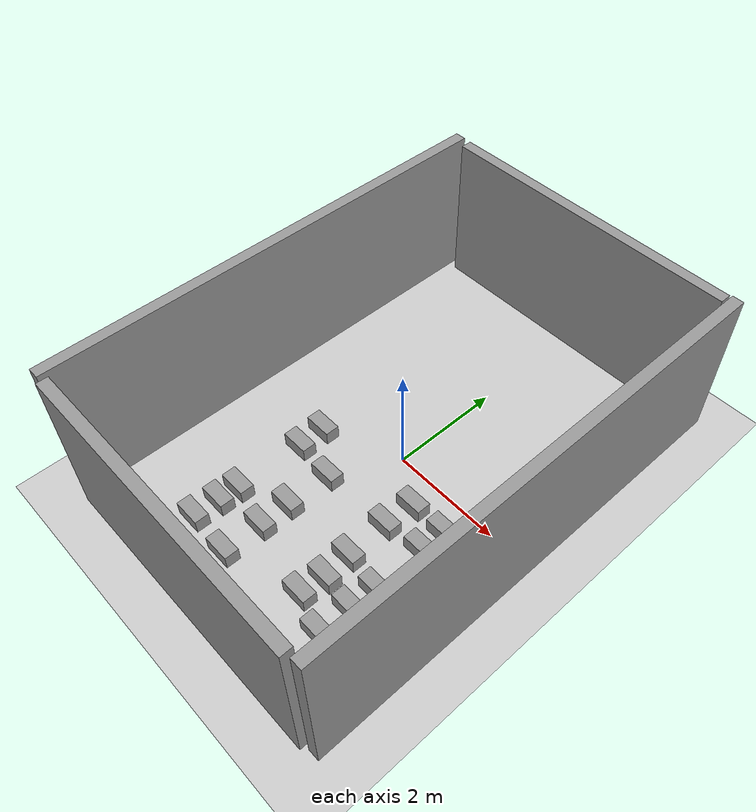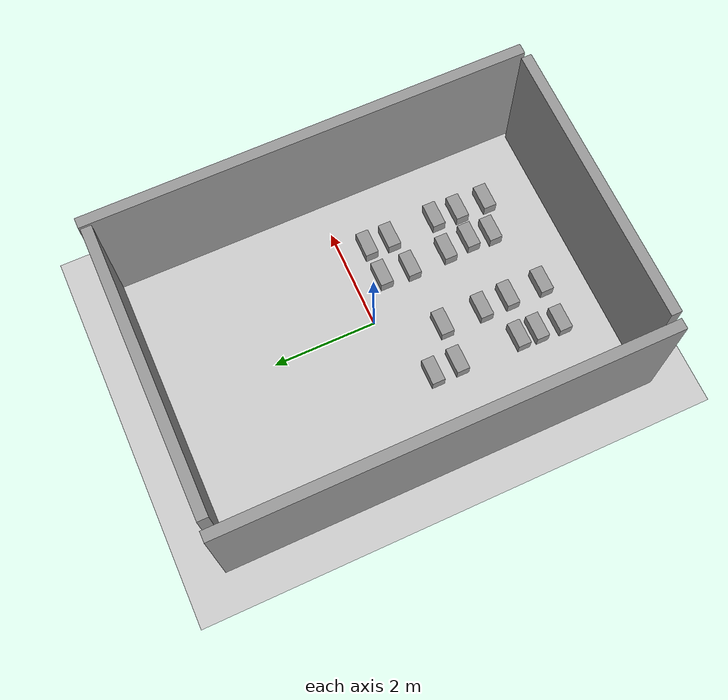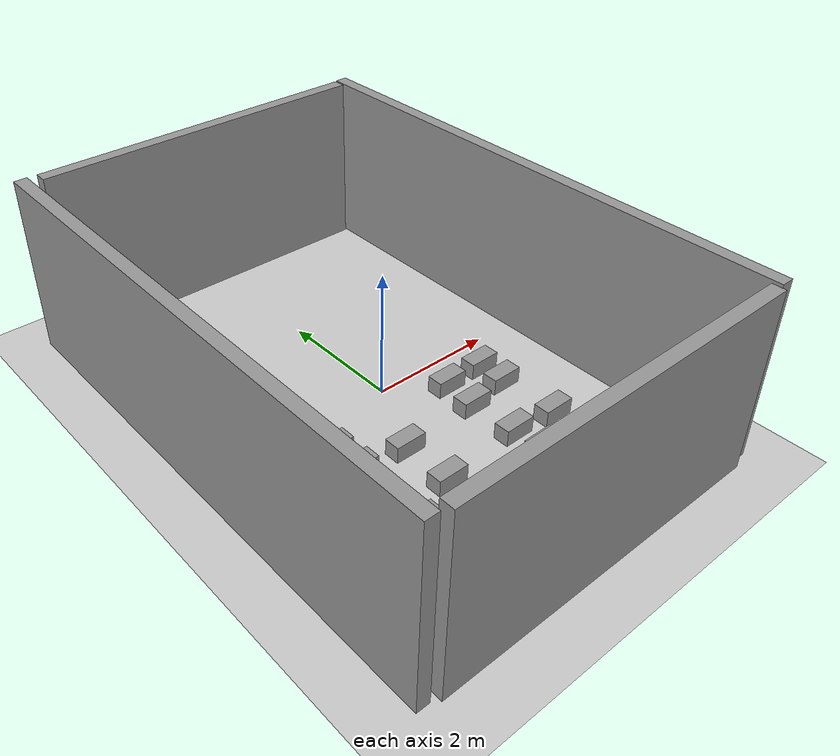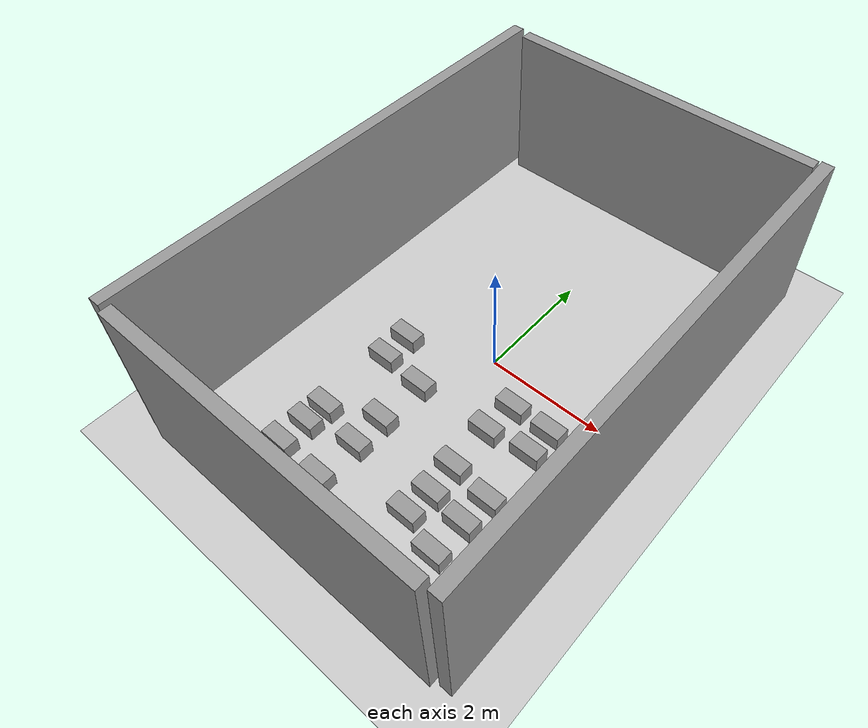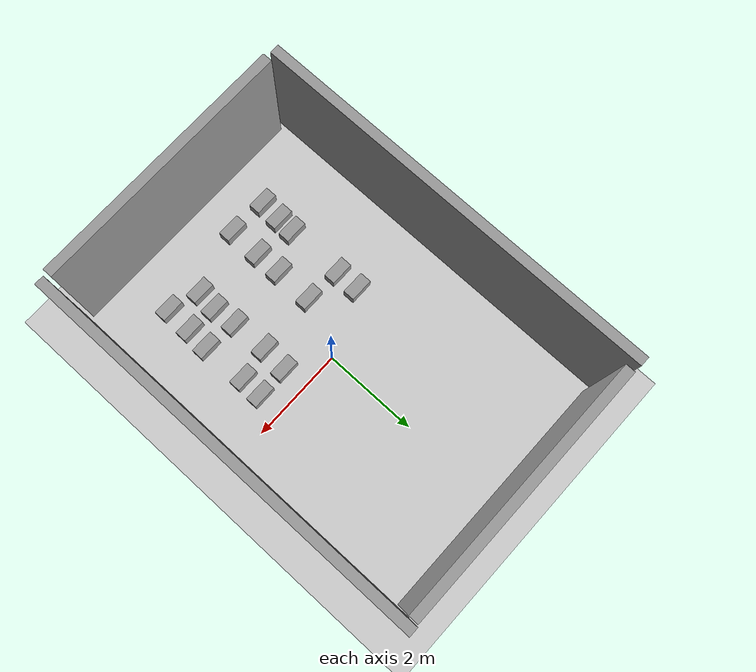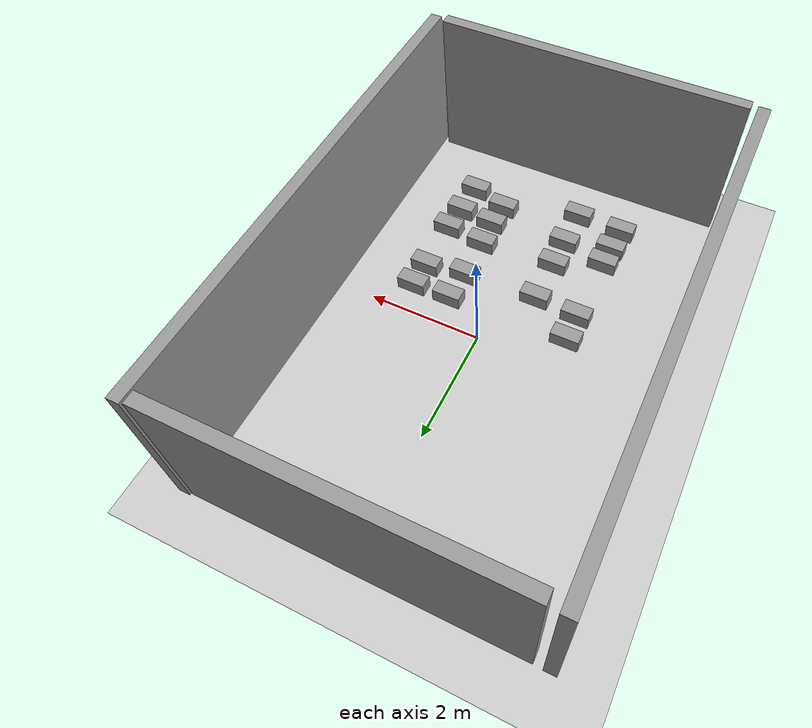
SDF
<sdf version="1.7">
 <world name="default">
  <model name="ground_plane">
   <static>1</static>
   <link name="link">
    <collision name="collision">
     <geometry><plane><normal>0 0 1</normal><size>100 100</size></plane></geometry>
     <surface>
      <contact><collide_bitmask>65535</collide_bitmask></contact>
      <friction><ode><mu>100</mu><mu2>50</mu2></ode></friction>
     </surface>
    </collision>
    <visual name="visual">
     <cast_shadows>0</cast_shadows>
     <geometry><plane><normal>0 0 1</normal><size>100 100</size></plane></geometry>
     <material>
      <script><uri>file://media/materials/scripts/gazebo.material</uri><name>Gazebo/Grey</name></script>
     </material>
    </visual>
   </link>
  </model>
  <model name="grey_wall_8_5">
   <link name="link">
    <pose>0 4.29385 1.4 0 -0 0</pose>
    <inertial>
     <mass>1</mass>
     <inertia><ixx>1</ixx><ixy>0</ixy><ixz>0</ixz><iyy>1</iyy><iyz>0</iyz><izz>1</izz></inertia>
    </inertial>
    <visual name="visual">
     <cast_shadows>0</cast_shadows>
     <geometry><box><size>5.4 0.2 2.8</size></box></geometry>
     <material>
      <script>
       <uri>model://grey_wall/materials/scripts</uri>
       <uri>model://grey_wall/materials/textures</uri>
       <name>vrc/grey_wall</name>
      </script>
      <shader type="pixel"><normal_map>__default__</normal_map></shader>
      <ambient>1 1 1 1</ambient>
      <diffuse>1 1 1 1</diffuse>
      <specular>0 0 0 1</specular>
      <emissive>0 0 0 1</emissive>
     </material>
    </visual>
    <collision name="collision">
     <geometry><box><size>5.4 0.2 2.8</size></box></geometry>
     <surface>
      <friction>
       <ode><mu>1</mu><mu2>1</mu2><fdir1>0 0 0</fdir1><slip1>0</slip1><slip2>0</slip2></ode>
       <torsional>
        <coefficient>1</coefficient>
        <patch_radius>0</patch_radius>
        <surface_radius>0</surface_radius>
        <use_patch_radius>1</use_patch_radius>
        <ode><slip>0</slip></ode>
       </torsional>
      </friction>
      <bounce><restitution_coefficient>0</restitution_coefficient><threshold>1e+06</threshold></bounce>
      <contact>
       <collide_without_contact>0</collide_without_contact>
       <collide_without_contact_bitmask>1</collide_without_contact_bitmask>
       <collide_bitmask>1</collide_bitmask>
       <ode>
        <soft_cfm>0</soft_cfm>
        <soft_erp>0.2</soft_erp>
        <kp>1e+13</kp>
        <kd>1</kd>
        <max_vel>0.01</max_vel>
        <min_depth>0</min_depth>
       </ode>
       <bullet>
        <split_impulse>1</split_impulse>
        <split_impulse_penetration_threshold>-0.01</split_impulse_penetration_threshold>
        <soft_cfm>0</soft_cfm>
        <soft_erp>0.2</soft_erp>
        <kp>1e+13</kp>
        <kd>1</kd>
       </bullet>
      </contact>
     </surface>
    </collision>
   </link>
   <link name="link_clone">
    <pose>0.043634 12.556 1.4 0 -0 0</pose>
    <inertial>
     <mass>1</mass>
     <inertia><ixx>1</ixx><ixy>0</ixy><ixz>0</ixz><iyy>1</iyy><iyz>0</iyz><izz>1</izz></inertia>
    </inertial>
    <visual name="visual">
     <cast_shadows>0</cast_shadows>
     <geometry><box><size>5.4 0.2 2.8</size></box></geometry>
     <material>
      <script>
       <uri>model://grey_wall/materials/scripts</uri>
       <uri>model://grey_wall/materials/textures</uri>
       <name>vrc/grey_wall</name>
      </script>
      <shader type="pixel"><normal_map>__default__</normal_map></shader>
      <ambient>1 1 1 1</ambient>
      <diffuse>1 1 1 1</diffuse>
      <specular>0 0 0 1</specular>
      <emissive>0 0 0 1</emissive>
     </material>
    </visual>
    <collision name="collision">
     <geometry><box><size>5.4 0.2 2.8</size></box></geometry>
     <surface>
      <friction>
       <ode><mu>1</mu><mu2>1</mu2><fdir1>0 0 0</fdir1><slip1>0</slip1><slip2>0</slip2></ode>
       <torsional>
        <coefficient>1</coefficient>
        <patch_radius>0</patch_radius>
        <surface_radius>0</surface_radius>
        <use_patch_radius>1</use_patch_radius>
        <ode><slip>0</slip></ode>
       </torsional>
      </friction>
      <bounce><restitution_coefficient>0</restitution_coefficient><threshold>1e+06</threshold></bounce>
      <contact>
       <collide_without_contact>0</collide_without_contact>
       <collide_without_contact_bitmask>1</collide_without_contact_bitmask>
       <collide_bitmask>1</collide_bitmask>
       <ode>
        <soft_cfm>0</soft_cfm>
        <soft_erp>0.2</soft_erp>
        <kp>1e+13</kp>
        <kd>1</kd>
        <max_vel>0.01</max_vel>
        <min_depth>0</min_depth>
       </ode>
       <bullet>
        <split_impulse>1</split_impulse>
        <split_impulse_penetration_threshold>-0.01</split_impulse_penetration_threshold>
        <soft_cfm>0</soft_cfm>
        <soft_erp>0.2</soft_erp>
        <kp>1e+13</kp>
        <kd>1</kd>
       </bullet>
      </contact>
     </surface>
    </collision>
   </link>
   <link name="link_clone_0">
    <pose>2.87528 8.48137 1.4 0 -0 0</pose>
    <inertial>
     <mass>1</mass>
     <inertia><ixx>1</ixx><ixy>0</ixy><ixz>0</ixz><iyy>1</iyy><iyz>0</iyz><izz>1</izz></inertia>
    </inertial>
    <visual name="visual">
     <cast_shadows>0</cast_shadows>
     <geometry><box><size>0.2 8.4 2.8</size></box></geometry>
     <material>
      <script>
       <uri>model://grey_wall/materials/scripts</uri>
       <uri>model://grey_wall/materials/textures</uri>
       <name>vrc/grey_wall</name>
      </script>
      <shader type="pixel"><normal_map>__default__</normal_map></shader>
      <ambient>1 1 1 1</ambient>
      <diffuse>1 1 1 1</diffuse>
      <specular>0 0 0 1</specular>
      <emissive>0 0 0 1</emissive>
     </material>
    </visual>
    <collision name="collision">
     <geometry><box><size>0.2 8.4 2.8</size></box></geometry>
     <surface>
      <friction>
       <ode><mu>1</mu><mu2>1</mu2><fdir1>0 0 0</fdir1><slip1>0</slip1><slip2>0</slip2></ode>
       <torsional>
        <coefficient>1</coefficient>
        <patch_radius>0</patch_radius>
        <surface_radius>0</surface_radius>
        <use_patch_radius>1</use_patch_radius>
        <ode><slip>0</slip></ode>
       </torsional>
      </friction>
      <bounce><restitution_coefficient>0</restitution_coefficient><threshold>1e+06</threshold></bounce>
      <contact>
       <collide_without_contact>0</collide_without_contact>
       <collide_without_contact_bitmask>1</collide_without_contact_bitmask>
       <collide_bitmask>1</collide_bitmask>
       <ode>
        <soft_cfm>0</soft_cfm>
        <soft_erp>0.2</soft_erp>
        <kp>1e+13</kp>
        <kd>1</kd>
        <max_vel>0.01</max_vel>
        <min_depth>0</min_depth>
       </ode>
       <bullet>
        <split_impulse>1</split_impulse>
        <split_impulse_penetration_threshold>-0.01</split_impulse_penetration_threshold>
        <soft_cfm>0</soft_cfm>
        <soft_erp>0.2</soft_erp>
        <kp>1e+13</kp>
        <kd>1</kd>
       </bullet>
      </contact>
     </surface>
    </collision>
   </link>
   <link name="link_clone_0_clone">
    <pose>-2.90085 8.46581 1.4 0 -0 0</pose>
    <inertial>
     <mass>1</mass>
     <inertia><ixx>1</ixx><ixy>0</ixy><ixz>0</ixz><iyy>1</iyy><iyz>0</iyz><izz>1</izz></inertia>
    </inertial>
    <visual name="visual">
     <cast_shadows>0</cast_shadows>
     <geometry><box><size>0.2 8.4 2.8</size></box></geometry>
     <material>
      <script>
       <uri>model://grey_wall/materials/scripts</uri>
       <uri>model://grey_wall/materials/textures</uri>
       <name>vrc/grey_wall</name>
      </script>
      <shader type="pixel"><normal_map>__default__</normal_map></shader>
      <ambient>1 1 1 1</ambient>
      <diffuse>1 1 1 1</diffuse>
      <specular>0 0 0 1</specular>
      <emissive>0 0 0 1</emissive>
     </material>
    </visual>
    <collision name="collision">
     <geometry><box><size>0.2 8.4 2.8</size></box></geometry>
     <surface>
      <friction>
       <ode><mu>1</mu><mu2>1</mu2><fdir1>0 0 0</fdir1><slip1>0</slip1><slip2>0</slip2></ode>
       <torsional>
        <coefficient>1</coefficient>
        <patch_radius>0</patch_radius>
        <surface_radius>0</surface_radius>
        <use_patch_radius>1</use_patch_radius>
        <ode><slip>0</slip></ode>
       </torsional>
      </friction>
      <bounce><restitution_coefficient>0</restitution_coefficient><threshold>1e+06</threshold></bounce>
      <contact>
       <collide_without_contact>0</collide_without_contact>
       <collide_without_contact_bitmask>1</collide_without_contact_bitmask>
       <collide_bitmask>1</collide_bitmask>
       <ode>
        <soft_cfm>0</soft_cfm>
        <soft_erp>0.2</soft_erp>
        <kp>1e+13</kp>
        <kd>1</kd>
        <max_vel>0.01</max_vel>
        <min_depth>0</min_depth>
       </ode>
       <bullet>
        <split_impulse>1</split_impulse>
        <split_impulse_penetration_threshold>-0.01</split_impulse_penetration_threshold>
        <soft_cfm>0</soft_cfm>
        <soft_erp>0.2</soft_erp>
        <kp>1e+13</kp>
        <kd>1</kd>
       </bullet>
      </contact>
     </surface>
    </collision>
   </link>
   <static>1</static>
   <pose>-0.144395 -8.42706 0 0 -0 0</pose>
  </model>
  <model name="box_race_car_clone_20">
   <link name="link">
    <inertial>
     <mass>10</mass>
     <inertia>
      <ixx>0.260417</ixx>
      <ixy>0</ixy>
      <ixz>0</ixz>
      <iyy>0.416667</iyy>
      <iyz>0</iyz>
      <izz>0.260417</izz>
     </inertia>
    </inertial>
    <visual name="visual">
     <geometry><box><size>0.5 0.25 0.5</size></box></geometry>
     <material>
      <script><name>Gazebo/Grey</name><uri>file://media/materials/scripts/gazebo.material</uri></script>
      <shader type="pixel"><normal_map>__default__</normal_map></shader>
      <ambient>0.3 0.3 0.3 1</ambient>
      <diffuse>0.7 0.7 0.7 1</diffuse>
      <specular>0.01 0.01 0.01 1</specular>
      <emissive>0 0 0 1</emissive>
     </material>
    </visual>
    <collision name="collision">
     <geometry><box><size>0.5 0.25 0.5</size></box></geometry>
     <surface>
      <friction>
       <ode><mu>1</mu><mu2>1</mu2><fdir1>0 0 0</fdir1><slip1>0</slip1><slip2>0</slip2></ode>
       <torsional>
        <coefficient>1</coefficient>
        <patch_radius>0</patch_radius>
        <surface_radius>0</surface_radius>
        <use_patch_radius>1</use_patch_radius>
        <ode><slip>0</slip></ode>
       </torsional>
      </friction>
      <bounce><restitution_coefficient>0</restitution_coefficient><threshold>1e+06</threshold></bounce>
      <contact>
       <collide_without_contact>0</collide_without_contact>
       <collide_without_contact_bitmask>1</collide_without_contact_bitmask>
       <collide_bitmask>1</collide_bitmask>
       <ode>
        <soft_cfm>0</soft_cfm>
        <soft_erp>0.2</soft_erp>
        <kp>1e+13</kp>
        <kd>1</kd>
        <max_vel>0.01</max_vel>
        <min_depth>0</min_depth>
       </ode>
       <bullet>
        <split_impulse>1</split_impulse>
        <split_impulse_penetration_threshold>-0.01</split_impulse_penetration_threshold>
        <soft_cfm>0</soft_cfm>
        <soft_erp>0.2</soft_erp>
        <kp>1e+13</kp>
        <kd>1</kd>
       </bullet>
      </contact>
     </surface>
    </collision>
   </link>
   <static>0</static>
   <pose>-0.568656 -1.13771 0 0 -0 0</pose>
  </model>
  <model name="box_race_car_clone_20_clone">
   <link name="link">
    <inertial>
     <mass>10</mass>
     <inertia>
      <ixx>0.260417</ixx>
      <ixy>0</ixy>
      <ixz>0</ixz>
      <iyy>0.416667</iyy>
      <iyz>0</iyz>
      <izz>0.260417</izz>
     </inertia>
    </inertial>
    <visual name="visual">
     <geometry><box><size>0.5 0.25 0.5</size></box></geometry>
     <material>
      <script><name>Gazebo/Grey</name><uri>file://media/materials/scripts/gazebo.material</uri></script>
      <shader type="pixel"><normal_map>__default__</normal_map></shader>
      <ambient>0.3 0.3 0.3 1</ambient>
      <diffuse>0.7 0.7 0.7 1</diffuse>
      <specular>0.01 0.01 0.01 1</specular>
      <emissive>0 0 0 1</emissive>
     </material>
    </visual>
    <collision name="collision">
     <geometry><box><size>0.5 0.25 0.5</size></box></geometry>
     <surface>
      <friction>
       <ode><mu>1</mu><mu2>1</mu2><fdir1>0 0 0</fdir1><slip1>0</slip1><slip2>0</slip2></ode>
       <torsional>
        <coefficient>1</coefficient>
        <patch_radius>0</patch_radius>
        <surface_radius>0</surface_radius>
        <use_patch_radius>1</use_patch_radius>
        <ode><slip>0</slip></ode>
       </torsional>
      </friction>
      <bounce><restitution_coefficient>0</restitution_coefficient><threshold>1e+06</threshold></bounce>
      <contact>
       <collide_without_contact>0</collide_without_contact>
       <collide_without_contact_bitmask>1</collide_without_contact_bitmask>
       <collide_bitmask>1</collide_bitmask>
       <ode>
        <soft_cfm>0</soft_cfm>
        <soft_erp>0.2</soft_erp>
        <kp>1e+13</kp>
        <kd>1</kd>
        <max_vel>0.01</max_vel>
        <min_depth>0</min_depth>
       </ode>
       <bullet>
        <split_impulse>1</split_impulse>
        <split_impulse_penetration_threshold>-0.01</split_impulse_penetration_threshold>
        <soft_cfm>0</soft_cfm>
        <soft_erp>0.2</soft_erp>
        <kp>1e+13</kp>
        <kd>1</kd>
       </bullet>
      </contact>
     </surface>
    </collision>
   </link>
   <static>0</static>
   <pose>-0.571618 -1.9502 0 0 -0 0</pose>
  </model>
  <model name="box_race_car_clone_20_clone_0">
   <link name="link">
    <inertial>
     <mass>10</mass>
     <inertia>
      <ixx>0.260417</ixx>
      <ixy>0</ixy>
      <ixz>0</ixz>
      <iyy>0.416667</iyy>
      <iyz>0</iyz>
      <izz>0.260417</izz>
     </inertia>
    </inertial>
    <visual name="visual">
     <geometry><box><size>0.5 0.25 0.5</size></box></geometry>
     <material>
      <script><name>Gazebo/Grey</name><uri>file://media/materials/scripts/gazebo.material</uri></script>
      <shader type="pixel"><normal_map>__default__</normal_map></shader>
      <ambient>0.3 0.3 0.3 1</ambient>
      <diffuse>0.7 0.7 0.7 1</diffuse>
      <specular>0.01 0.01 0.01 1</specular>
      <emissive>0 0 0 1</emissive>
     </material>
    </visual>
    <collision name="collision">
     <geometry><box><size>0.5 0.25 0.5</size></box></geometry>
     <surface>
      <friction>
       <ode><mu>1</mu><mu2>1</mu2><fdir1>0 0 0</fdir1><slip1>0</slip1><slip2>0</slip2></ode>
       <torsional>
        <coefficient>1</coefficient>
        <patch_radius>0</patch_radius>
        <surface_radius>0</surface_radius>
        <use_patch_radius>1</use_patch_radius>
        <ode><slip>0</slip></ode>
       </torsional>
      </friction>
      <bounce><restitution_coefficient>0</restitution_coefficient><threshold>1e+06</threshold></bounce>
      <contact>
       <collide_without_contact>0</collide_without_contact>
       <collide_without_contact_bitmask>1</collide_without_contact_bitmask>
       <collide_bitmask>1</collide_bitmask>
       <ode>
        <soft_cfm>0</soft_cfm>
        <soft_erp>0.2</soft_erp>
        <kp>1e+13</kp>
        <kd>1</kd>
        <max_vel>0.01</max_vel>
        <min_depth>0</min_depth>
       </ode>
       <bullet>
        <split_impulse>1</split_impulse>
        <split_impulse_penetration_threshold>-0.01</split_impulse_penetration_threshold>
        <soft_cfm>0</soft_cfm>
        <soft_erp>0.2</soft_erp>
        <kp>1e+13</kp>
        <kd>1</kd>
       </bullet>
      </contact>
     </surface>
    </collision>
   </link>
   <static>0</static>
   <pose>-0.559718 -2.50311 0 0 -0 0</pose>
  </model>
  <model name="box_race_car_clone_20_clone_1">
   <link name="link">
    <inertial>
     <mass>10</mass>
     <inertia>
      <ixx>0.260417</ixx>
      <ixy>0</ixy>
      <ixz>0</ixz>
      <iyy>0.416667</iyy>
      <iyz>0</iyz>
      <izz>0.260417</izz>
     </inertia>
    </inertial>
    <visual name="visual">
     <geometry><box><size>0.5 0.25 0.5</size></box></geometry>
     <material>
      <script><name>Gazebo/Grey</name><uri>file://media/materials/scripts/gazebo.material</uri></script>
      <shader type="pixel"><normal_map>__default__</normal_map></shader>
      <ambient>0.3 0.3 0.3 1</ambient>
      <diffuse>0.7 0.7 0.7 1</diffuse>
      <specular>0.01 0.01 0.01 1</specular>
      <emissive>0 0 0 1</emissive>
     </material>
    </visual>
    <collision name="collision">
     <geometry><box><size>0.5 0.25 0.5</size></box></geometry>
     <surface>
      <friction>
       <ode><mu>1</mu><mu2>1</mu2><fdir1>0 0 0</fdir1><slip1>0</slip1><slip2>0</slip2></ode>
       <torsional>
        <coefficient>1</coefficient>
        <patch_radius>0</patch_radius>
        <surface_radius>0</surface_radius>
        <use_patch_radius>1</use_patch_radius>
        <ode><slip>0</slip></ode>
       </torsional>
      </friction>
      <bounce><restitution_coefficient>0</restitution_coefficient><threshold>1e+06</threshold></bounce>
      <contact>
       <collide_without_contact>0</collide_without_contact>
       <collide_without_contact_bitmask>1</collide_without_contact_bitmask>
       <collide_bitmask>1</collide_bitmask>
       <ode>
        <soft_cfm>0</soft_cfm>
        <soft_erp>0.2</soft_erp>
        <kp>1e+13</kp>
        <kd>1</kd>
        <max_vel>0.01</max_vel>
        <min_depth>0</min_depth>
       </ode>
       <bullet>
        <split_impulse>1</split_impulse>
        <split_impulse_penetration_threshold>-0.01</split_impulse_penetration_threshold>
        <soft_cfm>0</soft_cfm>
        <soft_erp>0.2</soft_erp>
        <kp>1e+13</kp>
        <kd>1</kd>
       </bullet>
      </contact>
     </surface>
    </collision>
   </link>
   <static>0</static>
   <pose>-0.572264 -3.20323 0 0 -0 0</pose>
  </model>
  <model name="box_race_car_clone_20_clone_13">
   <link name="link">
    <inertial>
     <mass>10</mass>
     <inertia>
      <ixx>0.260417</ixx>
      <ixy>0</ixy>
      <ixz>0</ixz>
      <iyy>0.416667</iyy>
      <iyz>0</iyz>
      <izz>0.260417</izz>
     </inertia>
    </inertial>
    <visual name="visual">
     <geometry><box><size>0.5 0.25 0.5</size></box></geometry>
     <material>
      <script><name>Gazebo/Grey</name><uri>file://media/materials/scripts/gazebo.material</uri></script>
      <shader type="pixel"><normal_map>__default__</normal_map></shader>
      <ambient>0.3 0.3 0.3 1</ambient>
      <diffuse>0.7 0.7 0.7 1</diffuse>
      <specular>0.01 0.01 0.01 1</specular>
      <emissive>0 0 0 1</emissive>
     </material>
    </visual>
    <collision name="collision">
     <geometry><box><size>0.5 0.25 0.5</size></box></geometry>
     <surface>
      <friction>
       <ode><mu>1</mu><mu2>1</mu2><fdir1>0 0 0</fdir1><slip1>0</slip1><slip2>0</slip2></ode>
       <torsional>
        <coefficient>1</coefficient>
        <patch_radius>0</patch_radius>
        <surface_radius>0</surface_radius>
        <use_patch_radius>1</use_patch_radius>
        <ode><slip>0</slip></ode>
       </torsional>
      </friction>
      <bounce><restitution_coefficient>0</restitution_coefficient><threshold>1e+06</threshold></bounce>
      <contact>
       <collide_without_contact>0</collide_without_contact>
       <collide_without_contact_bitmask>1</collide_without_contact_bitmask>
       <collide_bitmask>1</collide_bitmask>
       <ode>
        <soft_cfm>0</soft_cfm>
        <soft_erp>0.2</soft_erp>
        <kp>1e+13</kp>
        <kd>1</kd>
        <max_vel>0.01</max_vel>
        <min_depth>0</min_depth>
       </ode>
       <bullet>
        <split_impulse>1</split_impulse>
        <split_impulse_penetration_threshold>-0.01</split_impulse_penetration_threshold>
        <soft_cfm>0</soft_cfm>
        <soft_erp>0.2</soft_erp>
        <kp>1e+13</kp>
        <kd>1</kd>
       </bullet>
      </contact>
     </surface>
    </collision>
   </link>
   <static>0</static>
   <pose>-1.35625 -0.573353 0 0 -0 0</pose>
  </model>
  <model name="box_race_car_clone_20_clone_14">
   <link name="link">
    <inertial>
     <mass>10</mass>
     <inertia>
      <ixx>0.260417</ixx>
      <ixy>0</ixy>
      <ixz>0</ixz>
      <iyy>0.416667</iyy>
      <iyz>0</iyz>
      <izz>0.260417</izz>
     </inertia>
    </inertial>
    <visual name="visual">
     <geometry><box><size>0.5 0.25 0.5</size></box></geometry>
     <material>
      <script><name>Gazebo/Grey</name><uri>file://media/materials/scripts/gazebo.material</uri></script>
      <shader type="pixel"><normal_map>__default__</normal_map></shader>
      <ambient>0.3 0.3 0.3 1</ambient>
      <diffuse>0.7 0.7 0.7 1</diffuse>
      <specular>0.01 0.01 0.01 1</specular>
      <emissive>0 0 0 1</emissive>
     </material>
    </visual>
    <collision name="collision">
     <geometry><box><size>0.5 0.25 0.5</size></box></geometry>
     <surface>
      <friction>
       <ode><mu>1</mu><mu2>1</mu2><fdir1>0 0 0</fdir1><slip1>0</slip1><slip2>0</slip2></ode>
       <torsional>
        <coefficient>1</coefficient>
        <patch_radius>0</patch_radius>
        <surface_radius>0</surface_radius>
        <use_patch_radius>1</use_patch_radius>
        <ode><slip>0</slip></ode>
       </torsional>
      </friction>
      <bounce><restitution_coefficient>0</restitution_coefficient><threshold>1e+06</threshold></bounce>
      <contact>
       <collide_without_contact>0</collide_without_contact>
       <collide_without_contact_bitmask>1</collide_without_contact_bitmask>
       <collide_bitmask>1</collide_bitmask>
       <ode>
        <soft_cfm>0</soft_cfm>
        <soft_erp>0.2</soft_erp>
        <kp>1e+13</kp>
        <kd>1</kd>
        <max_vel>0.01</max_vel>
        <min_depth>0</min_depth>
       </ode>
       <bullet>
        <split_impulse>1</split_impulse>
        <split_impulse_penetration_threshold>-0.01</split_impulse_penetration_threshold>
        <soft_cfm>0</soft_cfm>
        <soft_erp>0.2</soft_erp>
        <kp>1e+13</kp>
        <kd>1</kd>
       </bullet>
      </contact>
     </surface>
    </collision>
   </link>
   <static>0</static>
   <pose>-1.34277 -1.07695 0 0 -0 0</pose>
  </model>
  <model name="box_race_car_clone_20_clone_15">
   <link name="link">
    <inertial>
     <mass>10</mass>
     <inertia>
      <ixx>0.260417</ixx>
      <ixy>0</ixy>
      <ixz>0</ixz>
      <iyy>0.416667</iyy>
      <iyz>0</iyz>
      <izz>0.260417</izz>
     </inertia>
    </inertial>
    <visual name="visual">
     <geometry><box><size>0.5 0.25 0.5</size></box></geometry>
     <material>
      <script><name>Gazebo/Grey</name><uri>file://media/materials/scripts/gazebo.material</uri></script>
      <shader type="pixel"><normal_map>__default__</normal_map></shader>
      <ambient>0.3 0.3 0.3 1</ambient>
      <diffuse>0.7 0.7 0.7 1</diffuse>
      <specular>0.01 0.01 0.01 1</specular>
      <emissive>0 0 0 1</emissive>
     </material>
    </visual>
    <collision name="collision">
     <geometry><box><size>0.5 0.25 0.5</size></box></geometry>
     <surface>
      <friction>
       <ode><mu>1</mu><mu2>1</mu2><fdir1>0 0 0</fdir1><slip1>0</slip1><slip2>0</slip2></ode>
       <torsional>
        <coefficient>1</coefficient>
        <patch_radius>0</patch_radius>
        <surface_radius>0</surface_radius>
        <use_patch_radius>1</use_patch_radius>
        <ode><slip>0</slip></ode>
       </torsional>
      </friction>
      <bounce><restitution_coefficient>0</restitution_coefficient><threshold>1e+06</threshold></bounce>
      <contact>
       <collide_without_contact>0</collide_without_contact>
       <collide_without_contact_bitmask>1</collide_without_contact_bitmask>
       <collide_bitmask>1</collide_bitmask>
       <ode>
        <soft_cfm>0</soft_cfm>
        <soft_erp>0.2</soft_erp>
        <kp>1e+13</kp>
        <kd>1</kd>
        <max_vel>0.01</max_vel>
        <min_depth>0</min_depth>
       </ode>
       <bullet>
        <split_impulse>1</split_impulse>
        <split_impulse_penetration_threshold>-0.01</split_impulse_penetration_threshold>
        <soft_cfm>0</soft_cfm>
        <soft_erp>0.2</soft_erp>
        <kp>1e+13</kp>
        <kd>1</kd>
       </bullet>
      </contact>
     </surface>
    </collision>
   </link>
   <static>0</static>
   <pose>-1.36312 -2.32916 0 0 -0 0</pose>
  </model>
  <model name="box_race_car_clone_20_clone_16">
   <link name="link">
    <inertial>
     <mass>10</mass>
     <inertia>
      <ixx>0.260417</ixx>
      <ixy>0</ixy>
      <ixz>0</ixz>
      <iyy>0.416667</iyy>
      <iyz>0</iyz>
      <izz>0.260417</izz>
     </inertia>
    </inertial>
    <visual name="visual">
     <geometry><box><size>0.5 0.25 0.5</size></box></geometry>
     <material>
      <script><name>Gazebo/Grey</name><uri>file://media/materials/scripts/gazebo.material</uri></script>
      <shader type="pixel"><normal_map>__default__</normal_map></shader>
      <ambient>0.3 0.3 0.3 1</ambient>
      <diffuse>0.7 0.7 0.7 1</diffuse>
      <specular>0.01 0.01 0.01 1</specular>
      <emissive>0 0 0 1</emissive>
     </material>
    </visual>
    <collision name="collision">
     <geometry><box><size>0.5 0.25 0.5</size></box></geometry>
     <surface>
      <friction>
       <ode><mu>1</mu><mu2>1</mu2><fdir1>0 0 0</fdir1><slip1>0</slip1><slip2>0</slip2></ode>
       <torsional>
        <coefficient>1</coefficient>
        <patch_radius>0</patch_radius>
        <surface_radius>0</surface_radius>
        <use_patch_radius>1</use_patch_radius>
        <ode><slip>0</slip></ode>
       </torsional>
      </friction>
      <bounce><restitution_coefficient>0</restitution_coefficient><threshold>1e+06</threshold></bounce>
      <contact>
       <collide_without_contact>0</collide_without_contact>
       <collide_without_contact_bitmask>1</collide_without_contact_bitmask>
       <collide_bitmask>1</collide_bitmask>
       <ode>
        <soft_cfm>0</soft_cfm>
        <soft_erp>0.2</soft_erp>
        <kp>1e+13</kp>
        <kd>1</kd>
        <max_vel>0.01</max_vel>
        <min_depth>0</min_depth>
       </ode>
       <bullet>
        <split_impulse>1</split_impulse>
        <split_impulse_penetration_threshold>-0.01</split_impulse_penetration_threshold>
        <soft_cfm>0</soft_cfm>
        <soft_erp>0.2</soft_erp>
        <kp>1e+13</kp>
        <kd>1</kd>
       </bullet>
      </contact>
     </surface>
    </collision>
   </link>
   <static>0</static>
   <pose>-1.37511 -2.70369 0 0 -0 0</pose>
  </model>
  <model name="box_race_car_clone_20_clone_17">
   <link name="link">
    <inertial>
     <mass>10</mass>
     <inertia>
      <ixx>0.260417</ixx>
      <ixy>0</ixy>
      <ixz>0</ixz>
      <iyy>0.416667</iyy>
      <iyz>0</iyz>
      <izz>0.260417</izz>
     </inertia>
    </inertial>
    <visual name="visual">
     <geometry><box><size>0.5 0.25 0.5</size></box></geometry>
     <material>
      <script><name>Gazebo/Grey</name><uri>file://media/materials/scripts/gazebo.material</uri></script>
      <shader type="pixel"><normal_map>__default__</normal_map></shader>
      <ambient>0.3 0.3 0.3 1</ambient>
      <diffuse>0.7 0.7 0.7 1</diffuse>
      <specular>0.01 0.01 0.01 1</specular>
      <emissive>0 0 0 1</emissive>
     </material>
    </visual>
    <collision name="collision">
     <geometry><box><size>0.5 0.25 0.5</size></box></geometry>
     <surface>
      <friction>
       <ode><mu>1</mu><mu2>1</mu2><fdir1>0 0 0</fdir1><slip1>0</slip1><slip2>0</slip2></ode>
       <torsional>
        <coefficient>1</coefficient>
        <patch_radius>0</patch_radius>
        <surface_radius>0</surface_radius>
        <use_patch_radius>1</use_patch_radius>
        <ode><slip>0</slip></ode>
       </torsional>
      </friction>
      <bounce><restitution_coefficient>0</restitution_coefficient><threshold>1e+06</threshold></bounce>
      <contact>
       <collide_without_contact>0</collide_without_contact>
       <collide_without_contact_bitmask>1</collide_without_contact_bitmask>
       <collide_bitmask>1</collide_bitmask>
       <ode>
        <soft_cfm>0</soft_cfm>
        <soft_erp>0.2</soft_erp>
        <kp>1e+13</kp>
        <kd>1</kd>
        <max_vel>0.01</max_vel>
        <min_depth>0</min_depth>
       </ode>
       <bullet>
        <split_impulse>1</split_impulse>
        <split_impulse_penetration_threshold>-0.01</split_impulse_penetration_threshold>
        <soft_cfm>0</soft_cfm>
        <soft_erp>0.2</soft_erp>
        <kp>1e+13</kp>
        <kd>1</kd>
       </bullet>
      </contact>
     </surface>
    </collision>
   </link>
   <static>0</static>
   <pose>-1.3998 -3.1666 0 0 -0 0</pose>
  </model>
  <model name="box_race_car_clone_20_clone_18">
   <link name="link">
    <inertial>
     <mass>10</mass>
     <inertia>
      <ixx>0.260417</ixx>
      <ixy>0</ixy>
      <ixz>0</ixz>
      <iyy>0.416667</iyy>
      <iyz>0</iyz>
      <izz>0.260417</izz>
     </inertia>
    </inertial>
    <visual name="visual">
     <geometry><box><size>0.5 0.25 0.5</size></box></geometry>
     <material>
      <script><name>Gazebo/Grey</name><uri>file://media/materials/scripts/gazebo.material</uri></script>
      <shader type="pixel"><normal_map>__default__</normal_map></shader>
      <ambient>0.3 0.3 0.3 1</ambient>
      <diffuse>0.7 0.7 0.7 1</diffuse>
      <specular>0.01 0.01 0.01 1</specular>
      <emissive>0 0 0 1</emissive>
     </material>
    </visual>
    <collision name="collision">
     <geometry><box><size>0.5 0.25 0.5</size></box></geometry>
     <surface>
      <friction>
       <ode><mu>1</mu><mu2>1</mu2><fdir1>0 0 0</fdir1><slip1>0</slip1><slip2>0</slip2></ode>
       <torsional>
        <coefficient>1</coefficient>
        <patch_radius>0</patch_radius>
        <surface_radius>0</surface_radius>
        <use_patch_radius>1</use_patch_radius>
        <ode><slip>0</slip></ode>
       </torsional>
      </friction>
      <bounce><restitution_coefficient>0</restitution_coefficient><threshold>1e+06</threshold></bounce>
      <contact>
       <collide_without_contact>0</collide_without_contact>
       <collide_without_contact_bitmask>1</collide_without_contact_bitmask>
       <collide_bitmask>1</collide_bitmask>
       <ode>
        <soft_cfm>0</soft_cfm>
        <soft_erp>0.2</soft_erp>
        <kp>1e+13</kp>
        <kd>1</kd>
        <max_vel>0.01</max_vel>
        <min_depth>0</min_depth>
       </ode>
       <bullet>
        <split_impulse>1</split_impulse>
        <split_impulse_penetration_threshold>-0.01</split_impulse_penetration_threshold>
        <soft_cfm>0</soft_cfm>
        <soft_erp>0.2</soft_erp>
        <kp>1e+13</kp>
        <kd>1</kd>
       </bullet>
      </contact>
     </surface>
    </collision>
   </link>
   <static>0</static>
   <pose>0.782478 -2.80274 0 0 -0 0</pose>
  </model>
  <model name="box_race_car_clone_20_clone_19">
   <link name="link">
    <inertial>
     <mass>10</mass>
     <inertia>
      <ixx>0.260417</ixx>
      <ixy>0</ixy>
      <ixz>0</ixz>
      <iyy>0.416667</iyy>
      <iyz>0</iyz>
      <izz>0.260417</izz>
     </inertia>
    </inertial>
    <visual name="visual">
     <geometry><box><size>0.5 0.25 0.5</size></box></geometry>
     <material>
      <script><name>Gazebo/Grey</name><uri>file://media/materials/scripts/gazebo.material</uri></script>
      <shader type="pixel"><normal_map>__default__</normal_map></shader>
      <ambient>0.3 0.3 0.3 1</ambient>
      <diffuse>0.7 0.7 0.7 1</diffuse>
      <specular>0.01 0.01 0.01 1</specular>
      <emissive>0 0 0 1</emissive>
     </material>
    </visual>
    <collision name="collision">
     <geometry><box><size>0.5 0.25 0.5</size></box></geometry>
     <surface>
      <friction>
       <ode><mu>1</mu><mu2>1</mu2><fdir1>0 0 0</fdir1><slip1>0</slip1><slip2>0</slip2></ode>
       <torsional>
        <coefficient>1</coefficient>
        <patch_radius>0</patch_radius>
        <surface_radius>0</surface_radius>
        <use_patch_radius>1</use_patch_radius>
        <ode><slip>0</slip></ode>
       </torsional>
      </friction>
      <bounce><restitution_coefficient>0</restitution_coefficient><threshold>1e+06</threshold></bounce>
      <contact>
       <collide_without_contact>0</collide_without_contact>
       <collide_without_contact_bitmask>1</collide_without_contact_bitmask>
       <collide_bitmask>1</collide_bitmask>
       <ode>
        <soft_cfm>0</soft_cfm>
        <soft_erp>0.2</soft_erp>
        <kp>1e+13</kp>
        <kd>1</kd>
        <max_vel>0.01</max_vel>
        <min_depth>0</min_depth>
       </ode>
       <bullet>
        <split_impulse>1</split_impulse>
        <split_impulse_penetration_threshold>-0.01</split_impulse_penetration_threshold>
        <soft_cfm>0</soft_cfm>
        <soft_erp>0.2</soft_erp>
        <kp>1e+13</kp>
        <kd>1</kd>
       </bullet>
      </contact>
     </surface>
    </collision>
   </link>
   <static>0</static>
   <pose>0.826256 -2.36012 0 0 -0 0</pose>
  </model>
  <model name="box_race_car_clone_20_clone_20">
   <link name="link">
    <inertial>
     <mass>10</mass>
     <inertia>
      <ixx>0.260417</ixx>
      <ixy>0</ixy>
      <ixz>0</ixz>
      <iyy>0.416667</iyy>
      <iyz>0</iyz>
      <izz>0.260417</izz>
     </inertia>
    </inertial>
    <visual name="visual">
     <geometry><box><size>0.5 0.25 0.5</size></box></geometry>
     <material>
      <script><name>Gazebo/Grey</name><uri>file://media/materials/scripts/gazebo.material</uri></script>
      <shader type="pixel"><normal_map>__default__</normal_map></shader>
      <ambient>0.3 0.3 0.3 1</ambient>
      <diffuse>0.7 0.7 0.7 1</diffuse>
      <specular>0.01 0.01 0.01 1</specular>
      <emissive>0 0 0 1</emissive>
     </material>
    </visual>
    <collision name="collision">
     <geometry><box><size>0.5 0.25 0.5</size></box></geometry>
     <surface>
      <friction>
       <ode><mu>1</mu><mu2>1</mu2><fdir1>0 0 0</fdir1><slip1>0</slip1><slip2>0</slip2></ode>
       <torsional>
        <coefficient>1</coefficient>
        <patch_radius>0</patch_radius>
        <surface_radius>0</surface_radius>
        <use_patch_radius>1</use_patch_radius>
        <ode><slip>0</slip></ode>
       </torsional>
      </friction>
      <bounce><restitution_coefficient>0</restitution_coefficient><threshold>1e+06</threshold></bounce>
      <contact>
       <collide_without_contact>0</collide_without_contact>
       <collide_without_contact_bitmask>1</collide_without_contact_bitmask>
       <collide_bitmask>1</collide_bitmask>
       <ode>
        <soft_cfm>0</soft_cfm>
        <soft_erp>0.2</soft_erp>
        <kp>1e+13</kp>
        <kd>1</kd>
        <max_vel>0.01</max_vel>
        <min_depth>0</min_depth>
       </ode>
       <bullet>
        <split_impulse>1</split_impulse>
        <split_impulse_penetration_threshold>-0.01</split_impulse_penetration_threshold>
        <soft_cfm>0</soft_cfm>
        <soft_erp>0.2</soft_erp>
        <kp>1e+13</kp>
        <kd>1</kd>
       </bullet>
      </contact>
     </surface>
    </collision>
   </link>
   <static>0</static>
   <pose>0.7832 -1.85548 0 0 -0 0</pose>
  </model>
  <model name="box_race_car_clone_20_clone_21">
   <link name="link">
    <inertial>
     <mass>10</mass>
     <inertia>
      <ixx>0.260417</ixx>
      <ixy>0</ixy>
      <ixz>0</ixz>
      <iyy>0.416667</iyy>
      <iyz>0</iyz>
      <izz>0.260417</izz>
     </inertia>
    </inertial>
    <visual name="visual">
     <geometry><box><size>0.5 0.25 0.5</size></box></geometry>
     <material>
      <script><name>Gazebo/Grey</name><uri>file://media/materials/scripts/gazebo.material</uri></script>
      <shader type="pixel"><normal_map>__default__</normal_map></shader>
      <ambient>0.3 0.3 0.3 1</ambient>
      <diffuse>0.7 0.7 0.7 1</diffuse>
      <specular>0.01 0.01 0.01 1</specular>
      <emissive>0 0 0 1</emissive>
     </material>
    </visual>
    <collision name="collision">
     <geometry><box><size>0.5 0.25 0.5</size></box></geometry>
     <surface>
      <friction>
       <ode><mu>1</mu><mu2>1</mu2><fdir1>0 0 0</fdir1><slip1>0</slip1><slip2>0</slip2></ode>
       <torsional>
        <coefficient>1</coefficient>
        <patch_radius>0</patch_radius>
        <surface_radius>0</surface_radius>
        <use_patch_radius>1</use_patch_radius>
        <ode><slip>0</slip></ode>
       </torsional>
      </friction>
      <bounce><restitution_coefficient>0</restitution_coefficient><threshold>1e+06</threshold></bounce>
      <contact>
       <collide_without_contact>0</collide_without_contact>
       <collide_without_contact_bitmask>1</collide_without_contact_bitmask>
       <collide_bitmask>1</collide_bitmask>
       <ode>
        <soft_cfm>0</soft_cfm>
        <soft_erp>0.2</soft_erp>
        <kp>1e+13</kp>
        <kd>1</kd>
        <max_vel>0.01</max_vel>
        <min_depth>0</min_depth>
       </ode>
       <bullet>
        <split_impulse>1</split_impulse>
        <split_impulse_penetration_threshold>-0.01</split_impulse_penetration_threshold>
        <soft_cfm>0</soft_cfm>
        <soft_erp>0.2</soft_erp>
        <kp>1e+13</kp>
        <kd>1</kd>
       </bullet>
      </contact>
     </surface>
    </collision>
   </link>
   <static>0</static>
   <pose>0.748668 -1.08471 0 0 -0 0</pose>
  </model>
  <model name="box_race_car_clone_20_clone_22">
   <link name="link">
    <inertial>
     <mass>10</mass>
     <inertia>
      <ixx>0.260417</ixx>
      <ixy>0</ixy>
      <ixz>0</ixz>
      <iyy>0.416667</iyy>
      <iyz>0</iyz>
      <izz>0.260417</izz>
     </inertia>
    </inertial>
    <visual name="visual">
     <geometry><box><size>0.5 0.25 0.5</size></box></geometry>
     <material>
      <script><name>Gazebo/Grey</name><uri>file://media/materials/scripts/gazebo.material</uri></script>
      <shader type="pixel"><normal_map>__default__</normal_map></shader>
      <ambient>0.3 0.3 0.3 1</ambient>
      <diffuse>0.7 0.7 0.7 1</diffuse>
      <specular>0.01 0.01 0.01 1</specular>
      <emissive>0 0 0 1</emissive>
     </material>
    </visual>
    <collision name="collision">
     <geometry><box><size>0.5 0.25 0.5</size></box></geometry>
     <surface>
      <friction>
       <ode><mu>1</mu><mu2>1</mu2><fdir1>0 0 0</fdir1><slip1>0</slip1><slip2>0</slip2></ode>
       <torsional>
        <coefficient>1</coefficient>
        <patch_radius>0</patch_radius>
        <surface_radius>0</surface_radius>
        <use_patch_radius>1</use_patch_radius>
        <ode><slip>0</slip></ode>
       </torsional>
      </friction>
      <bounce><restitution_coefficient>0</restitution_coefficient><threshold>1e+06</threshold></bounce>
      <contact>
       <collide_without_contact>0</collide_without_contact>
       <collide_without_contact_bitmask>1</collide_without_contact_bitmask>
       <collide_bitmask>1</collide_bitmask>
       <ode>
        <soft_cfm>0</soft_cfm>
        <soft_erp>0.2</soft_erp>
        <kp>1e+13</kp>
        <kd>1</kd>
        <max_vel>0.01</max_vel>
        <min_depth>0</min_depth>
       </ode>
       <bullet>
        <split_impulse>1</split_impulse>
        <split_impulse_penetration_threshold>-0.01</split_impulse_penetration_threshold>
        <soft_cfm>0</soft_cfm>
        <soft_erp>0.2</soft_erp>
        <kp>1e+13</kp>
        <kd>1</kd>
       </bullet>
      </contact>
     </surface>
    </collision>
   </link>
   <static>0</static>
   <pose>0.796226 -0.523788 0 0 -0 0</pose>
  </model>
  <model name="box_race_car_clone_20_clone_34">
   <link name="link">
    <inertial>
     <mass>10</mass>
     <inertia>
      <ixx>0.260417</ixx>
      <ixy>0</ixy>
      <ixz>0</ixz>
      <iyy>0.416667</iyy>
      <iyz>0</iyz>
      <izz>0.260417</izz>
     </inertia>
    </inertial>
    <visual name="visual">
     <geometry><box><size>0.5 0.25 0.5</size></box></geometry>
     <material>
      <script><name>Gazebo/Grey</name><uri>file://media/materials/scripts/gazebo.material</uri></script>
      <shader type="pixel"><normal_map>__default__</normal_map></shader>
      <ambient>0.3 0.3 0.3 1</ambient>
      <diffuse>0.7 0.7 0.7 1</diffuse>
      <specular>0.01 0.01 0.01 1</specular>
      <emissive>0 0 0 1</emissive>
     </material>
    </visual>
    <collision name="collision">
     <geometry><box><size>0.5 0.25 0.5</size></box></geometry>
     <surface>
      <friction>
       <ode><mu>1</mu><mu2>1</mu2><fdir1>0 0 0</fdir1><slip1>0</slip1><slip2>0</slip2></ode>
       <torsional>
        <coefficient>1</coefficient>
        <patch_radius>0</patch_radius>
        <surface_radius>0</surface_radius>
        <use_patch_radius>1</use_patch_radius>
        <ode><slip>0</slip></ode>
       </torsional>
      </friction>
      <bounce><restitution_coefficient>0</restitution_coefficient><threshold>1e+06</threshold></bounce>
      <contact>
       <collide_without_contact>0</collide_without_contact>
       <collide_without_contact_bitmask>1</collide_without_contact_bitmask>
       <collide_bitmask>1</collide_bitmask>
       <ode>
        <soft_cfm>0</soft_cfm>
        <soft_erp>0.2</soft_erp>
        <kp>1e+13</kp>
        <kd>1</kd>
        <max_vel>0.01</max_vel>
        <min_depth>0</min_depth>
       </ode>
       <bullet>
        <split_impulse>1</split_impulse>
        <split_impulse_penetration_threshold>-0.01</split_impulse_penetration_threshold>
        <soft_cfm>0</soft_cfm>
        <soft_erp>0.2</soft_erp>
        <kp>1e+13</kp>
        <kd>1</kd>
       </bullet>
      </contact>
     </surface>
    </collision>
   </link>
   <static>0</static>
   <pose>1.46767 -0.516089 0 0 -0 0</pose>
  </model>
  <model name="box_race_car_clone_20_clone_35">
   <link name="link">
    <inertial>
     <mass>10</mass>
     <inertia>
      <ixx>0.260417</ixx>
      <ixy>0</ixy>
      <ixz>0</ixz>
      <iyy>0.416667</iyy>
      <iyz>0</iyz>
      <izz>0.260417</izz>
     </inertia>
    </inertial>
    <visual name="visual">
     <geometry><box><size>0.5 0.25 0.5</size></box></geometry>
     <material>
      <script><name>Gazebo/Grey</name><uri>file://media/materials/scripts/gazebo.material</uri></script>
      <shader type="pixel"><normal_map>__default__</normal_map></shader>
      <ambient>0.3 0.3 0.3 1</ambient>
      <diffuse>0.7 0.7 0.7 1</diffuse>
      <specular>0.01 0.01 0.01 1</specular>
      <emissive>0 0 0 1</emissive>
     </material>
    </visual>
    <collision name="collision">
     <geometry><box><size>0.5 0.25 0.5</size></box></geometry>
     <surface>
      <friction>
       <ode><mu>1</mu><mu2>1</mu2><fdir1>0 0 0</fdir1><slip1>0</slip1><slip2>0</slip2></ode>
       <torsional>
        <coefficient>1</coefficient>
        <patch_radius>0</patch_radius>
        <surface_radius>0</surface_radius>
        <use_patch_radius>1</use_patch_radius>
        <ode><slip>0</slip></ode>
       </torsional>
      </friction>
      <bounce><restitution_coefficient>0</restitution_coefficient><threshold>1e+06</threshold></bounce>
      <contact>
       <collide_without_contact>0</collide_without_contact>
       <collide_without_contact_bitmask>1</collide_without_contact_bitmask>
       <collide_bitmask>1</collide_bitmask>
       <ode>
        <soft_cfm>0</soft_cfm>
        <soft_erp>0.2</soft_erp>
        <kp>1e+13</kp>
        <kd>1</kd>
        <max_vel>0.01</max_vel>
        <min_depth>0</min_depth>
       </ode>
       <bullet>
        <split_impulse>1</split_impulse>
        <split_impulse_penetration_threshold>-0.01</split_impulse_penetration_threshold>
        <soft_cfm>0</soft_cfm>
        <soft_erp>0.2</soft_erp>
        <kp>1e+13</kp>
        <kd>1</kd>
       </bullet>
      </contact>
     </surface>
    </collision>
   </link>
   <static>0</static>
   <pose>1.45283 -0.979414 0 0 -0 0</pose>
  </model>
  <model name="box_race_car_clone_20_clone_36">
   <link name="link">
    <inertial>
     <mass>10</mass>
     <inertia>
      <ixx>0.260417</ixx>
      <ixy>0</ixy>
      <ixz>0</ixz>
      <iyy>0.416667</iyy>
      <iyz>0</iyz>
      <izz>0.260417</izz>
     </inertia>
    </inertial>
    <visual name="visual">
     <geometry><box><size>0.5 0.25 0.5</size></box></geometry>
     <material>
      <script><name>Gazebo/Grey</name><uri>file://media/materials/scripts/gazebo.material</uri></script>
      <shader type="pixel"><normal_map>__default__</normal_map></shader>
      <ambient>0.3 0.3 0.3 1</ambient>
      <diffuse>0.7 0.7 0.7 1</diffuse>
      <specular>0.01 0.01 0.01 1</specular>
      <emissive>0 0 0 1</emissive>
     </material>
    </visual>
    <collision name="collision">
     <geometry><box><size>0.5 0.25 0.5</size></box></geometry>
     <surface>
      <friction>
       <ode><mu>1</mu><mu2>1</mu2><fdir1>0 0 0</fdir1><slip1>0</slip1><slip2>0</slip2></ode>
       <torsional>
        <coefficient>1</coefficient>
        <patch_radius>0</patch_radius>
        <surface_radius>0</surface_radius>
        <use_patch_radius>1</use_patch_radius>
        <ode><slip>0</slip></ode>
       </torsional>
      </friction>
      <bounce><restitution_coefficient>0</restitution_coefficient><threshold>1e+06</threshold></bounce>
      <contact>
       <collide_without_contact>0</collide_without_contact>
       <collide_without_contact_bitmask>1</collide_without_contact_bitmask>
       <collide_bitmask>1</collide_bitmask>
       <ode>
        <soft_cfm>0</soft_cfm>
        <soft_erp>0.2</soft_erp>
        <kp>1e+13</kp>
        <kd>1</kd>
        <max_vel>0.01</max_vel>
        <min_depth>0</min_depth>
       </ode>
       <bullet>
        <split_impulse>1</split_impulse>
        <split_impulse_penetration_threshold>-0.01</split_impulse_penetration_threshold>
        <soft_cfm>0</soft_cfm>
        <soft_erp>0.2</soft_erp>
        <kp>1e+13</kp>
        <kd>1</kd>
       </bullet>
      </contact>
     </surface>
    </collision>
   </link>
   <static>0</static>
   <pose>1.49121 -1.93783 0 0 -0 0</pose>
  </model>
  <model name="box_race_car_clone_20_clone_37">
   <link name="link">
    <inertial>
     <mass>10</mass>
     <inertia>
      <ixx>0.260417</ixx>
      <ixy>0</ixy>
      <ixz>0</ixz>
      <iyy>0.416667</iyy>
      <iyz>0</iyz>
      <izz>0.260417</izz>
     </inertia>
    </inertial>
    <visual name="visual">
     <geometry><box><size>0.5 0.25 0.5</size></box></geometry>
     <material>
      <script><name>Gazebo/Grey</name><uri>file://media/materials/scripts/gazebo.material</uri></script>
      <shader type="pixel"><normal_map>__default__</normal_map></shader>
      <ambient>0.3 0.3 0.3 1</ambient>
      <diffuse>0.7 0.7 0.7 1</diffuse>
      <specular>0.01 0.01 0.01 1</specular>
      <emissive>0 0 0 1</emissive>
     </material>
    </visual>
    <collision name="collision">
     <geometry><box><size>0.5 0.25 0.5</size></box></geometry>
     <surface>
      <friction>
       <ode><mu>1</mu><mu2>1</mu2><fdir1>0 0 0</fdir1><slip1>0</slip1><slip2>0</slip2></ode>
       <torsional>
        <coefficient>1</coefficient>
        <patch_radius>0</patch_radius>
        <surface_radius>0</surface_radius>
        <use_patch_radius>1</use_patch_radius>
        <ode><slip>0</slip></ode>
       </torsional>
      </friction>
      <bounce><restitution_coefficient>0</restitution_coefficient><threshold>1e+06</threshold></bounce>
      <contact>
       <collide_without_contact>0</collide_without_contact>
       <collide_without_contact_bitmask>1</collide_without_contact_bitmask>
       <collide_bitmask>1</collide_bitmask>
       <ode>
        <soft_cfm>0</soft_cfm>
        <soft_erp>0.2</soft_erp>
        <kp>1e+13</kp>
        <kd>1</kd>
        <max_vel>0.01</max_vel>
        <min_depth>0</min_depth>
       </ode>
       <bullet>
        <split_impulse>1</split_impulse>
        <split_impulse_penetration_threshold>-0.01</split_impulse_penetration_threshold>
        <soft_cfm>0</soft_cfm>
        <soft_erp>0.2</soft_erp>
        <kp>1e+13</kp>
        <kd>1</kd>
       </bullet>
      </contact>
     </surface>
    </collision>
   </link>
   <static>0</static>
   <pose>1.45604 -2.42024 0 0 -0 0</pose>
  </model>
  <model name="box_race_car_clone_20_clone_38">
   <link name="link">
    <inertial>
     <mass>10</mass>
     <inertia>
      <ixx>0.260417</ixx>
      <ixy>0</ixy>
      <ixz>0</ixz>
      <iyy>0.416667</iyy>
      <iyz>0</iyz>
      <izz>0.260417</izz>
     </inertia>
    </inertial>
    <visual name="visual">
     <geometry><box><size>0.5 0.25 0.5</size></box></geometry>
     <material>
      <script><name>Gazebo/Grey</name><uri>file://media/materials/scripts/gazebo.material</uri></script>
      <shader type="pixel"><normal_map>__default__</normal_map></shader>
      <ambient>0.3 0.3 0.3 1</ambient>
      <diffuse>0.7 0.7 0.7 1</diffuse>
      <specular>0.01 0.01 0.01 1</specular>
      <emissive>0 0 0 1</emissive>
     </material>
    </visual>
    <collision name="collision">
     <geometry><box><size>0.5 0.25 0.5</size></box></geometry>
     <surface>
      <friction>
       <ode><mu>1</mu><mu2>1</mu2><fdir1>0 0 0</fdir1><slip1>0</slip1><slip2>0</slip2></ode>
       <torsional>
        <coefficient>1</coefficient>
        <patch_radius>0</patch_radius>
        <surface_radius>0</surface_radius>
        <use_patch_radius>1</use_patch_radius>
        <ode><slip>0</slip></ode>
       </torsional>
      </friction>
      <bounce><restitution_coefficient>0</restitution_coefficient><threshold>1e+06</threshold></bounce>
      <contact>
       <collide_without_contact>0</collide_without_contact>
       <collide_without_contact_bitmask>1</collide_without_contact_bitmask>
       <collide_bitmask>1</collide_bitmask>
       <ode>
        <soft_cfm>0</soft_cfm>
        <soft_erp>0.2</soft_erp>
        <kp>1e+13</kp>
        <kd>1</kd>
        <max_vel>0.01</max_vel>
        <min_depth>0</min_depth>
       </ode>
       <bullet>
        <split_impulse>1</split_impulse>
        <split_impulse_penetration_threshold>-0.01</split_impulse_penetration_threshold>
        <soft_cfm>0</soft_cfm>
        <soft_erp>0.2</soft_erp>
        <kp>1e+13</kp>
        <kd>1</kd>
       </bullet>
      </contact>
     </surface>
    </collision>
   </link>
   <static>0</static>
   <pose>1.43963 -3 0 0 -0 0</pose>
  </model>
 </world>
</sdf>
